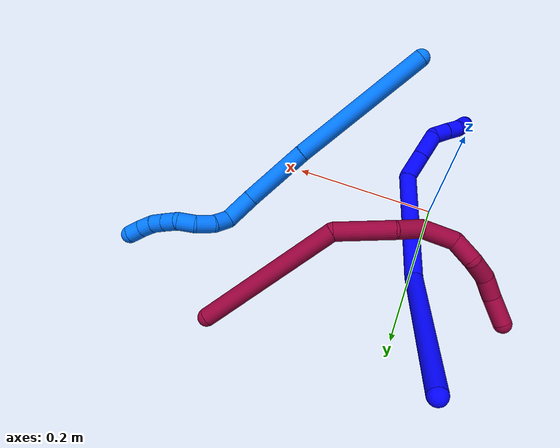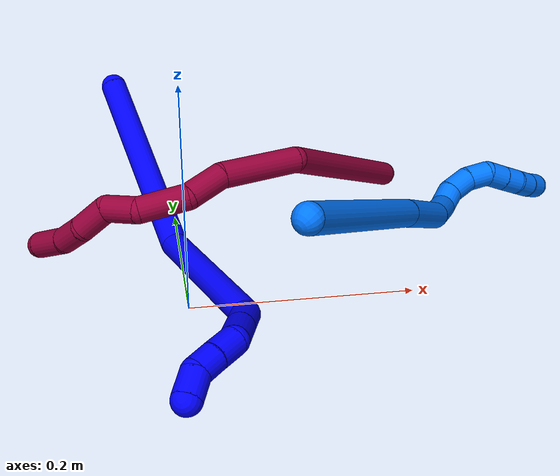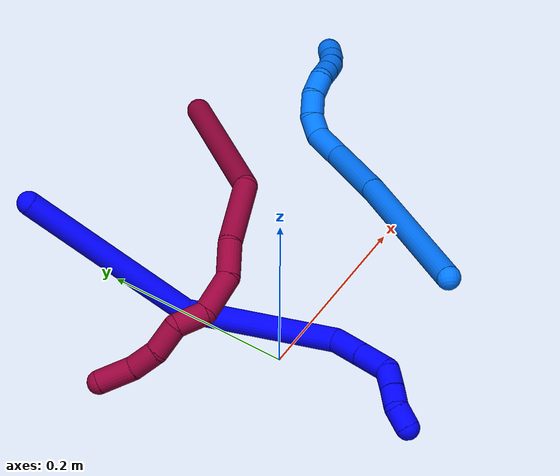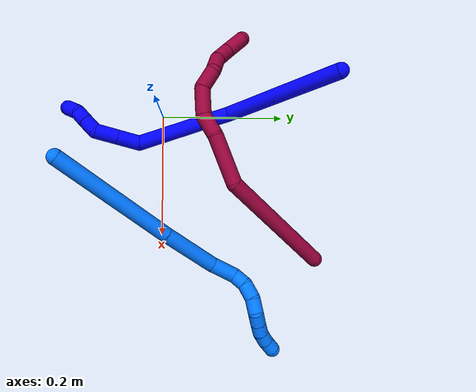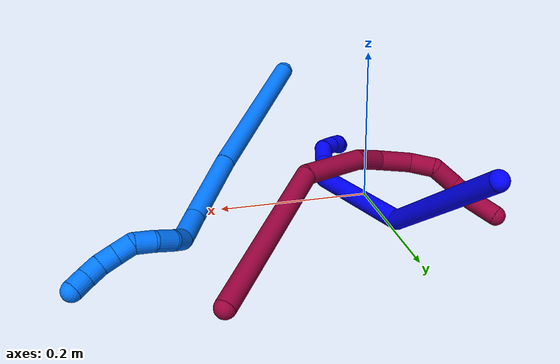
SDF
<sdf version="1.7">
 <world name="default">
  <model name="photoneo_s_sensor">
   <static>1</static>
   <pose>0 0 2 1.57079 1.57079 3.14159</pose>
   <link name="link">
    <inertial><mass>0.1</mass></inertial>
    <sensor name="sensor" type="depth">
     <update_rate>30</update_rate>
     <camera>
      <horizontal_fov>1.22</horizontal_fov>
      <image><width>1920</width><height>1200</height><format>B8G8R8</format></image>
      <clip><near>0.1</near><far>4</far></clip>
      <depth_camera><output>points</output></depth_camera>
     </camera>
     <plugin name="camera_plugin" filename="libgazebo_ros_depth_camera.so">
      <baseline>0.2</baseline>
      <alwaysOn>1</alwaysOn>
      <updateRate>0.0</updateRate>
      <cameraName>camera_ir</cameraName>
      <imageTopicName>/camera/color/image_raw</imageTopicName>
      <cameraInfoTopicName>/camera/color/camera_info</cameraInfoTopicName>
      <depthImageTopicName>/camera/depth/image_raw</depthImageTopicName>
      <depthImageCameraInfoTopicName>/camera/depth/camera_info</depthImageCameraInfoTopicName>
      <pointCloudTopicName>/camera/depth/points</pointCloudTopicName>
      <frameName>fr_optical</frameName>
      <pointCloudCutoff>0.1</pointCloudCutoff>
      <pointCloudCutoffMax>2.0</pointCloudCutoffMax>
      <distortionK1>0</distortionK1>
      <distortionK2>0</distortionK2>
      <distortionK3>0</distortionK3>
      <distortionT1>0</distortionT1>
      <distortionT2>0</distortionT2>
      <CxPrime>0</CxPrime>
      <Cx>0</Cx>
      <Cy>0</Cy>
      <focalLength>0</focalLength>
      <hackBaseline>0</hackBaseline>
     </plugin>
    </sensor>
   </link>
  </model>
  <model name="bin">
   <static>1</static>
   <link name="bottom">
    <collision name="collision-bottom">
     <pose>0 0 -0.01 0 -0 0</pose>
     <geometry><box><size>0.8 0.6 0.02</size></box></geometry>
     <surface>
      <friction><ode><mu>100</mu><mu2>100</mu2></ode></friction>
      <contact><collide_bitmask>65535</collide_bitmask></contact>
     </surface>
    </collision>
   </link>
   <link name="west_wall">
    <collision name="collision-west_wall">
     <pose>-0.41 0 0.1 0 -0 0</pose>
     <geometry><box><size>0.02 0.6 0.2</size></box></geometry>
     <surface>
      <friction><ode><mu>100</mu><mu2>100</mu2></ode></friction>
      <contact><collide_bitmask>65535</collide_bitmask></contact>
     </surface>
    </collision>
   </link>
   <link name="east_wall">
    <collision name="collision-east_wall">
     <pose>0.41 0 0.1 0 -0 0</pose>
     <geometry><box><size>0.02 0.6 0.2</size></box></geometry>
     <surface>
      <friction><ode><mu>100</mu><mu2>100</mu2></ode></friction>
      <contact><collide_bitmask>65535</collide_bitmask></contact>
     </surface>
    </collision>
   </link>
   <link name="south_wall">
    <collision name="collision-south_wall">
     <pose>0 -0.31 0.1 0 -0 0</pose>
     <geometry><box><size>0.8 0.02 0.2</size></box></geometry>
     <surface>
      <friction><ode><mu>100</mu><mu2>100</mu2></ode></friction>
      <contact><collide_bitmask>65535</collide_bitmask></contact>
     </surface>
    </collision>
   </link>
   <link name="north_wall">
    <collision name="collision-north_wall">
     <pose>0 0.31 0.1 0 -0 0</pose>
     <geometry><box><size>0.8 0.02 0.2</size></box></geometry>
     <surface>
      <friction><ode><mu>100</mu><mu2>100</mu2></ode></friction>
      <contact><collide_bitmask>65535</collide_bitmask></contact>
     </surface>
    </collision>
   </link>
  </model>
  <model name="1">
   <static>0</static>
   <link name="1">
    <collision name="collision-cylinder-e_1_1_4">
     <pose>0.042121 -0.089444 -0.011016 1.69334 0.43722 0.492216</pose>
     <geometry><cylinder><radius>0.0125</radius><length>0.198955</length></cylinder></geometry>
     <surface>
      <friction><ode><mu>1.16</mu><mu2>1.16</mu2><slip1>0</slip1><slip2>0</slip2></ode></friction>
      <contact><ode><kp>1e+06</kp><kd>1</kd><max_vel>0</max_vel><min_depth>0.001</min_depth></ode></contact>
     </surface>
    </collision>
    <visual name="visual-cylinder-e_1_1_4">
     <pose>0.042121 -0.089444 -0.011016 1.69334 0.43722 0.492216</pose>
     <geometry><cylinder><radius>0.0125</radius><length>0.198955</length></cylinder></geometry>
     <material><ambient>0 0 1 1</ambient></material>
    </visual>
    <collision name="collision-cylinder-e_2_4_5">
     <pose>0.08641 -0.244406 -0.065827 2.16003 0.027505 0.051461</pose>
     <geometry><cylinder><radius>0.0125</radius><length>0.157674</length></cylinder></geometry>
     <surface>
      <friction><ode><mu>1.16</mu><mu2>1.16</mu2><slip1>0</slip1><slip2>0</slip2></ode></friction>
      <contact><ode><kp>1e+06</kp><kd>1</kd><max_vel>0</max_vel><min_depth>0.001</min_depth></ode></contact>
     </surface>
    </collision>
    <visual name="visual-cylinder-e_2_4_5">
     <pose>0.08641 -0.244406 -0.065827 2.16003 0.027505 0.051461</pose>
     <geometry><cylinder><radius>0.0125</radius><length>0.157674</length></cylinder></geometry>
     <material><ambient>0 0 1 1</ambient></material>
    </visual>
    <collision name="collision-cylinder-e_3_5_6">
     <pose>0.09344 -0.31734 -0.126736 2.73266 0.254989 1.10736</pose>
     <geometry><cylinder><radius>0.0125</radius><length>0.038552</length></cylinder></geometry>
     <surface>
      <friction><ode><mu>1.16</mu><mu2>1.16</mu2><slip1>0</slip1><slip2>0</slip2></ode></friction>
      <contact><ode><kp>1e+06</kp><kd>1</kd><max_vel>0</max_vel><min_depth>0.001</min_depth></ode></contact>
     </surface>
    </collision>
    <visual name="visual-cylinder-e_3_5_6">
     <pose>0.09344 -0.31734 -0.126736 2.73266 0.254989 1.10736</pose>
     <geometry><cylinder><radius>0.0125</radius><length>0.038552</length></cylinder></geometry>
     <material><ambient>0 0 1 1</ambient></material>
    </visual>
    <collision name="collision-cylinder-e_4_6_7">
     <pose>0.103094 -0.331968 -0.160257 2.72748 0.261252 1.11776</pose>
     <geometry><cylinder><radius>0.0125</radius><length>0.0371</length></cylinder></geometry>
     <surface>
      <friction><ode><mu>1.16</mu><mu2>1.16</mu2><slip1>0</slip1><slip2>0</slip2></ode></friction>
      <contact><ode><kp>1e+06</kp><kd>1</kd><max_vel>0</max_vel><min_depth>0.001</min_depth></ode></contact>
     </surface>
    </collision>
    <visual name="visual-cylinder-e_4_6_7">
     <pose>0.103094 -0.331968 -0.160257 2.72748 0.261252 1.11776</pose>
     <geometry><cylinder><radius>0.0125</radius><length>0.0371</length></cylinder></geometry>
     <material><ambient>0 0 1 1</ambient></material>
    </visual>
    <collision name="collision-cylinder-e_5_7_8">
     <pose>0.116799 -0.339794 -0.184386 3.06207 0.855286 2.96745</pose>
     <geometry><cylinder><radius>0.0125</radius><length>0.023622</length></cylinder></geometry>
     <surface>
      <friction><ode><mu>1.16</mu><mu2>1.16</mu2><slip1>0</slip1><slip2>0</slip2></ode></friction>
      <contact><ode><kp>1e+06</kp><kd>1</kd><max_vel>0</max_vel><min_depth>0.001</min_depth></ode></contact>
     </surface>
    </collision>
    <visual name="visual-cylinder-e_5_7_8">
     <pose>0.116799 -0.339794 -0.184386 3.06207 0.855286 2.96745</pose>
     <geometry><cylinder><radius>0.0125</radius><length>0.023622</length></cylinder></geometry>
     <material><ambient>0 0 1 1</ambient></material>
    </visual>
    <collision name="collision-cylinder-e_6_8_9">
     <pose>0.13389 -0.340942 -0.198375 3.05683 0.915193 2.9698</pose>
     <geometry><cylinder><radius>0.0125</radius><length>0.020631</length></cylinder></geometry>
     <surface>
      <friction><ode><mu>1.16</mu><mu2>1.16</mu2><slip1>0</slip1><slip2>0</slip2></ode></friction>
      <contact><ode><kp>1e+06</kp><kd>1</kd><max_vel>0</max_vel><min_depth>0.001</min_depth></ode></contact>
     </surface>
    </collision>
    <visual name="visual-cylinder-e_6_8_9">
     <pose>0.13389 -0.340942 -0.198375 3.05683 0.915193 2.9698</pose>
     <geometry><cylinder><radius>0.0125</radius><length>0.020631</length></cylinder></geometry>
     <material><ambient>0 0 1 1</ambient></material>
    </visual>
    <collision name="collision-cylinder-e_7_9_2">
     <pose>0.151212 -0.347198 -0.209255 2.24923 0.893687 1.57249</pose>
     <geometry><cylinder><radius>0.0125</radius><length>0.023467</length></cylinder></geometry>
     <surface>
      <friction><ode><mu>1.16</mu><mu2>1.16</mu2><slip1>0</slip1><slip2>0</slip2></ode></friction>
      <contact><ode><kp>1e+06</kp><kd>1</kd><max_vel>0</max_vel><min_depth>0.001</min_depth></ode></contact>
     </surface>
    </collision>
    <visual name="visual-cylinder-e_7_9_2">
     <pose>0.151212 -0.347198 -0.209255 2.24923 0.893687 1.57249</pose>
     <geometry><cylinder><radius>0.0125</radius><length>0.023467</length></cylinder></geometry>
     <material><ambient>0 0 1 1</ambient></material>
    </visual>
    <collision name="collision-sphere-2">
     <pose>0.160357 -0.352922 -0.213869 0 -0 0</pose>
     <geometry><sphere><radius>0.0125</radius></sphere></geometry>
     <surface>
      <friction><ode><mu>1.16</mu><mu2>1.16</mu2><slip1>0</slip1><slip2>0</slip2></ode></friction>
      <contact><ode><kp>1e+06</kp><kd>1</kd><max_vel>0</max_vel><min_depth>0.001</min_depth></ode></contact>
     </surface>
    </collision>
    <visual name="visual-sphere-2">
     <pose>0.160357 -0.352922 -0.213869 0 -0 0</pose>
     <geometry><sphere><radius>0.0125</radius></sphere></geometry>
     <material><ambient>0 0 1 1</ambient></material>
    </visual>
    <collision name="collision-sphere-9">
     <pose>0.142067 -0.341475 -0.204641 0 -0 0</pose>
     <geometry><sphere><radius>0.0125</radius></sphere></geometry>
     <surface>
      <friction><ode><mu>1.16</mu><mu2>1.16</mu2><slip1>0</slip1><slip2>0</slip2></ode></friction>
      <contact><ode><kp>1e+06</kp><kd>1</kd><max_vel>0</max_vel><min_depth>0.001</min_depth></ode></contact>
     </surface>
    </collision>
    <visual name="visual-sphere-9">
     <pose>0.142067 -0.341475 -0.204641 0 -0 0</pose>
     <geometry><sphere><radius>0.0125</radius></sphere></geometry>
     <material><ambient>0 0 1 1</ambient></material>
    </visual>
    <collision name="collision-sphere-4">
     <pose>0.084242 -0.178888 -0.022032 0 -0 0</pose>
     <geometry><sphere><radius>0.0125</radius></sphere></geometry>
     <surface>
      <friction><ode><mu>1.16</mu><mu2>1.16</mu2><slip1>0</slip1><slip2>0</slip2></ode></friction>
      <contact><ode><kp>1e+06</kp><kd>1</kd><max_vel>0</max_vel><min_depth>0.001</min_depth></ode></contact>
     </surface>
    </collision>
    <visual name="visual-sphere-4">
     <pose>0.084242 -0.178888 -0.022032 0 -0 0</pose>
     <geometry><sphere><radius>0.0125</radius></sphere></geometry>
     <material><ambient>0 0 1 1</ambient></material>
    </visual>
    <collision name="collision-sphere-1">
     <geometry><sphere><radius>0.0125</radius></sphere></geometry>
     <surface>
      <friction><ode><mu>1.16</mu><mu2>1.16</mu2><slip1>0</slip1><slip2>0</slip2></ode></friction>
      <contact><ode><kp>1e+06</kp><kd>1</kd><max_vel>0</max_vel><min_depth>0.001</min_depth></ode></contact>
     </surface>
    </collision>
    <visual name="visual-sphere-1">
     <geometry><sphere><radius>0.0125</radius></sphere></geometry>
     <material><ambient>0 0 1 1</ambient></material>
    </visual>
    <collision name="collision-sphere-8">
     <pose>0.125713 -0.34041 -0.192109 0 -0 0</pose>
     <geometry><sphere><radius>0.0125</radius></sphere></geometry>
     <surface>
      <friction><ode><mu>1.16</mu><mu2>1.16</mu2><slip1>0</slip1><slip2>0</slip2></ode></friction>
      <contact><ode><kp>1e+06</kp><kd>1</kd><max_vel>0</max_vel><min_depth>0.001</min_depth></ode></contact>
     </surface>
    </collision>
    <visual name="visual-sphere-8">
     <pose>0.125713 -0.34041 -0.192109 0 -0 0</pose>
     <geometry><sphere><radius>0.0125</radius></sphere></geometry>
     <material><ambient>0 0 1 1</ambient></material>
    </visual>
    <collision name="collision-sphere-5">
     <pose>0.088578 -0.309923 -0.109621 0 -0 0</pose>
     <geometry><sphere><radius>0.0125</radius></sphere></geometry>
     <surface>
      <friction><ode><mu>1.16</mu><mu2>1.16</mu2><slip1>0</slip1><slip2>0</slip2></ode></friction>
      <contact><ode><kp>1e+06</kp><kd>1</kd><max_vel>0</max_vel><min_depth>0.001</min_depth></ode></contact>
     </surface>
    </collision>
    <visual name="visual-sphere-5">
     <pose>0.088578 -0.309923 -0.109621 0 -0 0</pose>
     <geometry><sphere><radius>0.0125</radius></sphere></geometry>
     <material><ambient>0 0 1 1</ambient></material>
    </visual>
    <collision name="collision-sphere-6">
     <pose>0.098302 -0.324757 -0.143851 0 -0 0</pose>
     <geometry><sphere><radius>0.0125</radius></sphere></geometry>
     <surface>
      <friction><ode><mu>1.16</mu><mu2>1.16</mu2><slip1>0</slip1><slip2>0</slip2></ode></friction>
      <contact><ode><kp>1e+06</kp><kd>1</kd><max_vel>0</max_vel><min_depth>0.001</min_depth></ode></contact>
     </surface>
    </collision>
    <visual name="visual-sphere-6">
     <pose>0.098302 -0.324757 -0.143851 0 -0 0</pose>
     <geometry><sphere><radius>0.0125</radius></sphere></geometry>
     <material><ambient>0 0 1 1</ambient></material>
    </visual>
    <collision name="collision-sphere-7">
     <pose>0.107885 -0.339179 -0.176662 0 -0 0</pose>
     <geometry><sphere><radius>0.0125</radius></sphere></geometry>
     <surface>
      <friction><ode><mu>1.16</mu><mu2>1.16</mu2><slip1>0</slip1><slip2>0</slip2></ode></friction>
      <contact><ode><kp>1e+06</kp><kd>1</kd><max_vel>0</max_vel><min_depth>0.001</min_depth></ode></contact>
     </surface>
    </collision>
    <visual name="visual-sphere-7">
     <pose>0.107885 -0.339179 -0.176662 0 -0 0</pose>
     <geometry><sphere><radius>0.0125</radius></sphere></geometry>
     <material><ambient>0 0 1 1</ambient></material>
    </visual>
    <inertial>
     <pose>0.077003 -0.20818 -0.073522 0 -0 0</pose>
     <mass>0.5</mass>
     <inertia>
      <ixx>0.001191</ixx>
      <ixy>0</ixy>
      <ixz>0</ixz>
      <iyy>0.000163</iyy>
      <iyz>0</iyz>
      <izz>0.000565</izz>
     </inertia>
    </inertial>
   </link>
   <pose>-0.053291 0.26635 0.125117 2.57742 0.735395 -2.77772</pose>
  </model>
  <model name="8">
   <static>0</static>
   <link name="8">
    <collision name="collision-cylinder-e_1_1_4">
     <pose>-0.06923 0.02843 0.067849 -0.396795 -0.755052 0.159109</pose>
     <geometry><cylinder><radius>0.0125</radius><length>0.202034</length></cylinder></geometry>
     <surface>
      <friction><ode><mu>1.16</mu><mu2>1.16</mu2><slip1>0</slip1><slip2>0</slip2></ode></friction>
      <contact><ode><kp>1e+06</kp><kd>1</kd><max_vel>0</max_vel><min_depth>0.001</min_depth></ode></contact>
     </surface>
    </collision>
    <visual name="visual-cylinder-e_1_1_4">
     <pose>-0.06923 0.02843 0.067849 -0.396795 -0.755052 0.159109</pose>
     <geometry><cylinder><radius>0.0125</radius><length>0.202034</length></cylinder></geometry>
     <material><ambient>0.584314 0 0.227451 1</ambient></material>
    </visual>
    <collision name="collision-cylinder-e_2_4_5">
     <pose>-0.156809 0.047613 0.169966 0.263567 -0.477135 -0.064451</pose>
     <geometry><cylinder><radius>0.0125</radius><length>0.079914</length></cylinder></geometry>
     <surface>
      <friction><ode><mu>1.16</mu><mu2>1.16</mu2><slip1>0</slip1><slip2>0</slip2></ode></friction>
      <contact><ode><kp>1e+06</kp><kd>1</kd><max_vel>0</max_vel><min_depth>0.001</min_depth></ode></contact>
     </surface>
    </collision>
    <visual name="visual-cylinder-e_2_4_5">
     <pose>-0.156809 0.047613 0.169966 0.263567 -0.477135 -0.064451</pose>
     <geometry><cylinder><radius>0.0125</radius><length>0.079914</length></cylinder></geometry>
     <material><ambient>0.584314 0 0.227451 1</ambient></material>
    </visual>
    <collision name="collision-cylinder-e_3_5_6">
     <pose>-0.178293 0.035724 0.222721 0.141938 -0.166303 -0.011849</pose>
     <geometry><cylinder><radius>0.0125</radius><length>0.037871</length></cylinder></geometry>
     <surface>
      <friction><ode><mu>1.16</mu><mu2>1.16</mu2><slip1>0</slip1><slip2>0</slip2></ode></friction>
      <contact><ode><kp>1e+06</kp><kd>1</kd><max_vel>0</max_vel><min_depth>0.001</min_depth></ode></contact>
     </surface>
    </collision>
    <visual name="visual-cylinder-e_3_5_6">
     <pose>-0.178293 0.035724 0.222721 0.141938 -0.166303 -0.011849</pose>
     <geometry><cylinder><radius>0.0125</radius><length>0.037871</length></cylinder></geometry>
     <material><ambient>0.584314 0 0.227451 1</ambient></material>
    </visual>
    <collision name="collision-cylinder-e_4_6_7">
     <pose>-0.187867 0.020223 0.259539 0.611712 -0.280024 -0.088945</pose>
     <geometry><cylinder><radius>0.0125</radius><length>0.046598</length></cylinder></geometry>
     <surface>
      <friction><ode><mu>1.16</mu><mu2>1.16</mu2><slip1>0</slip1><slip2>0</slip2></ode></friction>
      <contact><ode><kp>1e+06</kp><kd>1</kd><max_vel>0</max_vel><min_depth>0.001</min_depth></ode></contact>
     </surface>
    </collision>
    <visual name="visual-cylinder-e_4_6_7">
     <pose>-0.187867 0.020223 0.259539 0.611712 -0.280024 -0.088945</pose>
     <geometry><cylinder><radius>0.0125</radius><length>0.046598</length></cylinder></geometry>
     <material><ambient>0.584314 0 0.227451 1</ambient></material>
    </visual>
    <collision name="collision-cylinder-e_5_7_8">
     <pose>-0.198117 -0.007796 0.283132 1.23672 -0.233114 -0.166217</pose>
     <geometry><cylinder><radius>0.0125</radius><length>0.032989</length></cylinder></geometry>
     <surface>
      <friction><ode><mu>1.16</mu><mu2>1.16</mu2><slip1>0</slip1><slip2>0</slip2></ode></friction>
      <contact><ode><kp>1e+06</kp><kd>1</kd><max_vel>0</max_vel><min_depth>0.001</min_depth></ode></contact>
     </surface>
    </collision>
    <visual name="visual-cylinder-e_5_7_8">
     <pose>-0.198117 -0.007796 0.283132 1.23672 -0.233114 -0.166217</pose>
     <geometry><cylinder><radius>0.0125</radius><length>0.032989</length></cylinder></geometry>
     <material><ambient>0.584314 0 0.227451 1</ambient></material>
    </visual>
    <collision name="collision-cylinder-e_6_8_9">
     <pose>-0.197407 -0.034562 0.298805 0.839542 0.282198 0.126618</pose>
     <geometry><cylinder><radius>0.0125</radius><length>0.032465</length></cylinder></geometry>
     <surface>
      <friction><ode><mu>1.16</mu><mu2>1.16</mu2><slip1>0</slip1><slip2>0</slip2></ode></friction>
      <contact><ode><kp>1e+06</kp><kd>1</kd><max_vel>0</max_vel><min_depth>0.001</min_depth></ode></contact>
     </surface>
    </collision>
    <visual name="visual-cylinder-e_6_8_9">
     <pose>-0.197407 -0.034562 0.298805 0.839542 0.282198 0.126618</pose>
     <geometry><cylinder><radius>0.0125</radius><length>0.032465</length></cylinder></geometry>
     <material><ambient>0.584314 0 0.227451 1</ambient></material>
    </visual>
    <collision name="collision-cylinder-e_7_9_10">
     <pose>-0.188106 -0.059504 0.314403 1.19995 0.322404 0.221576</pose>
     <geometry><cylinder><radius>0.0125</radius><length>0.030177</length></cylinder></geometry>
     <surface>
      <friction><ode><mu>1.16</mu><mu2>1.16</mu2><slip1>0</slip1><slip2>0</slip2></ode></friction>
      <contact><ode><kp>1e+06</kp><kd>1</kd><max_vel>0</max_vel><min_depth>0.001</min_depth></ode></contact>
     </surface>
    </collision>
    <visual name="visual-cylinder-e_7_9_10">
     <pose>-0.188106 -0.059504 0.314403 1.19995 0.322404 0.221576</pose>
     <geometry><cylinder><radius>0.0125</radius><length>0.030177</length></cylinder></geometry>
     <material><ambient>0.584314 0 0.227451 1</ambient></material>
    </visual>
    <collision name="collision-cylinder-e_8_10_2">
     <pose>-0.181023 -0.091289 0.323401 1.36703 0.12162 0.099099</pose>
     <geometry><cylinder><radius>0.0125</radius><length>0.037953</length></cylinder></geometry>
     <surface>
      <friction><ode><mu>1.16</mu><mu2>1.16</mu2><slip1>0</slip1><slip2>0</slip2></ode></friction>
      <contact><ode><kp>1e+06</kp><kd>1</kd><max_vel>0</max_vel><min_depth>0.001</min_depth></ode></contact>
     </surface>
    </collision>
    <visual name="visual-cylinder-e_8_10_2">
     <pose>-0.181023 -0.091289 0.323401 1.36703 0.12162 0.099099</pose>
     <geometry><cylinder><radius>0.0125</radius><length>0.037953</length></cylinder></geometry>
     <material><ambient>0.584314 0 0.227451 1</ambient></material>
    </visual>
    <collision name="collision-sphere-2">
     <pose>-0.178721 -0.109736 0.327213 0 -0 0</pose>
     <geometry><sphere><radius>0.0125</radius></sphere></geometry>
     <surface>
      <friction><ode><mu>1.16</mu><mu2>1.16</mu2><slip1>0</slip1><slip2>0</slip2></ode></friction>
      <contact><ode><kp>1e+06</kp><kd>1</kd><max_vel>0</max_vel><min_depth>0.001</min_depth></ode></contact>
     </surface>
    </collision>
    <visual name="visual-sphere-2">
     <pose>-0.178721 -0.109736 0.327213 0 -0 0</pose>
     <geometry><sphere><radius>0.0125</radius></sphere></geometry>
     <material><ambient>0.584314 0 0.227451 1</ambient></material>
    </visual>
    <collision name="collision-sphere-10">
     <pose>-0.183325 -0.072842 0.319589 0 -0 0</pose>
     <geometry><sphere><radius>0.0125</radius></sphere></geometry>
     <surface>
      <friction><ode><mu>1.16</mu><mu2>1.16</mu2><slip1>0</slip1><slip2>0</slip2></ode></friction>
      <contact><ode><kp>1e+06</kp><kd>1</kd><max_vel>0</max_vel><min_depth>0.001</min_depth></ode></contact>
     </surface>
    </collision>
    <visual name="visual-sphere-10">
     <pose>-0.183325 -0.072842 0.319589 0 -0 0</pose>
     <geometry><sphere><radius>0.0125</radius></sphere></geometry>
     <material><ambient>0.584314 0 0.227451 1</ambient></material>
    </visual>
    <collision name="collision-sphere-9">
     <pose>-0.192887 -0.046166 0.309216 0 -0 0</pose>
     <geometry><sphere><radius>0.0125</radius></sphere></geometry>
     <surface>
      <friction><ode><mu>1.16</mu><mu2>1.16</mu2><slip1>0</slip1><slip2>0</slip2></ode></friction>
      <contact><ode><kp>1e+06</kp><kd>1</kd><max_vel>0</max_vel><min_depth>0.001</min_depth></ode></contact>
     </surface>
    </collision>
    <visual name="visual-sphere-9">
     <pose>-0.192887 -0.046166 0.309216 0 -0 0</pose>
     <geometry><sphere><radius>0.0125</radius></sphere></geometry>
     <material><ambient>0.584314 0 0.227451 1</ambient></material>
    </visual>
    <collision name="collision-sphere-4">
     <pose>-0.138459 0.05686 0.135697 0 -0 0</pose>
     <geometry><sphere><radius>0.0125</radius></sphere></geometry>
     <surface>
      <friction><ode><mu>1.16</mu><mu2>1.16</mu2><slip1>0</slip1><slip2>0</slip2></ode></friction>
      <contact><ode><kp>1e+06</kp><kd>1</kd><max_vel>0</max_vel><min_depth>0.001</min_depth></ode></contact>
     </surface>
    </collision>
    <visual name="visual-sphere-4">
     <pose>-0.138459 0.05686 0.135697 0 -0 0</pose>
     <geometry><sphere><radius>0.0125</radius></sphere></geometry>
     <material><ambient>0.584314 0 0.227451 1</ambient></material>
    </visual>
    <collision name="collision-sphere-1">
     <geometry><sphere><radius>0.0125</radius></sphere></geometry>
     <surface>
      <friction><ode><mu>1.16</mu><mu2>1.16</mu2><slip1>0</slip1><slip2>0</slip2></ode></friction>
      <contact><ode><kp>1e+06</kp><kd>1</kd><max_vel>0</max_vel><min_depth>0.001</min_depth></ode></contact>
     </surface>
    </collision>
    <visual name="visual-sphere-1">
     <geometry><sphere><radius>0.0125</radius></sphere></geometry>
     <material><ambient>0.584314 0 0.227451 1</ambient></material>
    </visual>
    <collision name="collision-sphere-8">
     <pose>-0.201927 -0.022957 0.288394 0 -0 0</pose>
     <geometry><sphere><radius>0.0125</radius></sphere></geometry>
     <surface>
      <friction><ode><mu>1.16</mu><mu2>1.16</mu2><slip1>0</slip1><slip2>0</slip2></ode></friction>
      <contact><ode><kp>1e+06</kp><kd>1</kd><max_vel>0</max_vel><min_depth>0.001</min_depth></ode></contact>
     </surface>
    </collision>
    <visual name="visual-sphere-8">
     <pose>-0.201927 -0.022957 0.288394 0 -0 0</pose>
     <geometry><sphere><radius>0.0125</radius></sphere></geometry>
     <material><ambient>0.584314 0 0.227451 1</ambient></material>
    </visual>
    <collision name="collision-sphere-5">
     <pose>-0.175159 0.038365 0.204235 0 -0 0</pose>
     <geometry><sphere><radius>0.0125</radius></sphere></geometry>
     <surface>
      <friction><ode><mu>1.16</mu><mu2>1.16</mu2><slip1>0</slip1><slip2>0</slip2></ode></friction>
      <contact><ode><kp>1e+06</kp><kd>1</kd><max_vel>0</max_vel><min_depth>0.001</min_depth></ode></contact>
     </surface>
    </collision>
    <visual name="visual-sphere-5">
     <pose>-0.175159 0.038365 0.204235 0 -0 0</pose>
     <geometry><sphere><radius>0.0125</radius></sphere></geometry>
     <material><ambient>0.584314 0 0.227451 1</ambient></material>
    </visual>
    <collision name="collision-sphere-6">
     <pose>-0.181428 0.033082 0.241207 0 -0 0</pose>
     <geometry><sphere><radius>0.0125</radius></sphere></geometry>
     <surface>
      <friction><ode><mu>1.16</mu><mu2>1.16</mu2><slip1>0</slip1><slip2>0</slip2></ode></friction>
      <contact><ode><kp>1e+06</kp><kd>1</kd><max_vel>0</max_vel><min_depth>0.001</min_depth></ode></contact>
     </surface>
    </collision>
    <visual name="visual-sphere-6">
     <pose>-0.181428 0.033082 0.241207 0 -0 0</pose>
     <geometry><sphere><radius>0.0125</radius></sphere></geometry>
     <material><ambient>0.584314 0 0.227451 1</ambient></material>
    </visual>
    <collision name="collision-sphere-7">
     <pose>-0.194307 0.007365 0.27787 0 -0 0</pose>
     <geometry><sphere><radius>0.0125</radius></sphere></geometry>
     <surface>
      <friction><ode><mu>1.16</mu><mu2>1.16</mu2><slip1>0</slip1><slip2>0</slip2></ode></friction>
      <contact><ode><kp>1e+06</kp><kd>1</kd><max_vel>0</max_vel><min_depth>0.001</min_depth></ode></contact>
     </surface>
    </collision>
    <visual name="visual-sphere-7">
     <pose>-0.194307 0.007365 0.27787 0 -0 0</pose>
     <geometry><sphere><radius>0.0125</radius></sphere></geometry>
     <material><ambient>0.584314 0 0.227451 1</ambient></material>
    </visual>
    <inertial>
     <pose>-0.135031 0.010409 0.177243 0 -0 0</pose>
     <mass>0.5</mass>
     <inertia>
      <ixx>0.000637</ixx>
      <ixy>0</ixy>
      <ixz>0</ixz>
      <iyy>0.000797</iyy>
      <iyz>0</iyz>
      <izz>0.000362</izz>
     </inertia>
    </inertial>
   </link>
   <pose>0.236491 0.256431 0.012406 2.72208 1.08873 0.244065</pose>
  </model>
  <model name="14">
   <static>0</static>
   <link name="14">
    <collision name="collision-cylinder-e_1_1_4">
     <pose>0.052417 0.046196 0.076346 -0.544158 0.53111 -0.151473</pose>
     <geometry><cylinder><radius>0.0125</radius><length>0.206981</length></cylinder></geometry>
     <surface>
      <friction><ode><mu>1.16</mu><mu2>1.16</mu2><slip1>0</slip1><slip2>0</slip2></ode></friction>
      <contact><ode><kp>1e+06</kp><kd>1</kd><max_vel>0</max_vel><min_depth>0.001</min_depth></ode></contact>
     </surface>
    </collision>
    <visual name="visual-cylinder-e_1_1_4">
     <pose>0.052417 0.046196 0.076346 -0.544158 0.53111 -0.151473</pose>
     <geometry><cylinder><radius>0.0125</radius><length>0.206981</length></cylinder></geometry>
     <material><ambient>0 0.462745 1 1</ambient></material>
    </visual>
    <collision name="collision-cylinder-e_2_4_5">
     <pose>0.130146 0.115444 0.186414 -0.599591 0.554749 -0.175564</pose>
     <geometry><cylinder><radius>0.0125</radius><length>0.096109</length></cylinder></geometry>
     <surface>
      <friction><ode><mu>1.16</mu><mu2>1.16</mu2><slip1>0</slip1><slip2>0</slip2></ode></friction>
      <contact><ode><kp>1e+06</kp><kd>1</kd><max_vel>0</max_vel><min_depth>0.001</min_depth></ode></contact>
     </surface>
    </collision>
    <visual name="visual-cylinder-e_2_4_5">
     <pose>0.130146 0.115444 0.186414 -0.599591 0.554749 -0.175564</pose>
     <geometry><cylinder><radius>0.0125</radius><length>0.096109</length></cylinder></geometry>
     <material><ambient>0 0.462745 1 1</ambient></material>
    </visual>
    <collision name="collision-cylinder-e_3_5_6">
     <pose>0.162319 0.15033 0.237023 -0.611329 0.321206 -0.102149</pose>
     <geometry><cylinder><radius>0.0125</radius><length>0.043466</length></cylinder></geometry>
     <surface>
      <friction><ode><mu>1.16</mu><mu2>1.16</mu2><slip1>0</slip1><slip2>0</slip2></ode></friction>
      <contact><ode><kp>1e+06</kp><kd>1</kd><max_vel>0</max_vel><min_depth>0.001</min_depth></ode></contact>
     </surface>
    </collision>
    <visual name="visual-cylinder-e_3_5_6">
     <pose>0.162319 0.15033 0.237023 -0.611329 0.321206 -0.102149</pose>
     <geometry><cylinder><radius>0.0125</radius><length>0.043466</length></cylinder></geometry>
     <material><ambient>0 0.462745 1 1</ambient></material>
    </visual>
    <collision name="collision-cylinder-e_4_6_7">
     <pose>0.16777 0.164042 0.264983 -0.16783 -0.124967 0.010525</pose>
     <geometry><cylinder><radius>0.0125</radius><length>0.022638</length></cylinder></geometry>
     <surface>
      <friction><ode><mu>1.16</mu><mu2>1.16</mu2><slip1>0</slip1><slip2>0</slip2></ode></friction>
      <contact><ode><kp>1e+06</kp><kd>1</kd><max_vel>0</max_vel><min_depth>0.001</min_depth></ode></contact>
     </surface>
    </collision>
    <visual name="visual-cylinder-e_4_6_7">
     <pose>0.16777 0.164042 0.264983 -0.16783 -0.124967 0.010525</pose>
     <geometry><cylinder><radius>0.0125</radius><length>0.022638</length></cylinder></geometry>
     <material><ambient>0 0.462745 1 1</ambient></material>
    </visual>
    <collision name="collision-cylinder-e_5_7_8">
     <pose>0.167549 0.164051 0.288686 0.146758 0.092963 0.006839</pose>
     <geometry><cylinder><radius>0.0125</radius><length>0.025644</length></cylinder></geometry>
     <surface>
      <friction><ode><mu>1.16</mu><mu2>1.16</mu2><slip1>0</slip1><slip2>0</slip2></ode></friction>
      <contact><ode><kp>1e+06</kp><kd>1</kd><max_vel>0</max_vel><min_depth>0.001</min_depth></ode></contact>
     </surface>
    </collision>
    <visual name="visual-cylinder-e_5_7_8">
     <pose>0.167549 0.164051 0.288686 0.146758 0.092963 0.006839</pose>
     <geometry><cylinder><radius>0.0125</radius><length>0.025644</length></cylinder></geometry>
     <material><ambient>0 0.462745 1 1</ambient></material>
    </visual>
    <collision name="collision-cylinder-e_6_8_9">
     <pose>0.172871 0.158 0.311784 0.380243 0.351309 0.068285</pose>
     <geometry><cylinder><radius>0.0125</radius><length>0.024015</length></cylinder></geometry>
     <surface>
      <friction><ode><mu>1.16</mu><mu2>1.16</mu2><slip1>0</slip1><slip2>0</slip2></ode></friction>
      <contact><ode><kp>1e+06</kp><kd>1</kd><max_vel>0</max_vel><min_depth>0.001</min_depth></ode></contact>
     </surface>
    </collision>
    <visual name="visual-cylinder-e_6_8_9">
     <pose>0.172871 0.158 0.311784 0.380243 0.351309 0.068285</pose>
     <geometry><cylinder><radius>0.0125</radius><length>0.024015</length></cylinder></geometry>
     <material><ambient>0 0.462745 1 1</ambient></material>
    </visual>
    <collision name="collision-cylinder-e_7_9_10">
     <pose>0.184938 0.1525 0.329076 0.190428 0.851524 0.086567</pose>
     <geometry><cylinder><radius>0.0125</radius><length>0.021094</length></cylinder></geometry>
     <surface>
      <friction><ode><mu>1.16</mu><mu2>1.16</mu2><slip1>0</slip1><slip2>0</slip2></ode></friction>
      <contact><ode><kp>1e+06</kp><kd>1</kd><max_vel>0</max_vel><min_depth>0.001</min_depth></ode></contact>
     </surface>
    </collision>
    <visual name="visual-cylinder-e_7_9_10">
     <pose>0.184938 0.1525 0.329076 0.190428 0.851524 0.086567</pose>
     <geometry><cylinder><radius>0.0125</radius><length>0.021094</length></cylinder></geometry>
     <material><ambient>0 0.462745 1 1</ambient></material>
    </visual>
    <collision name="collision-cylinder-e_8_10_11">
     <pose>0.200273 0.150193 0.342565 0.147767 0.832144 0.065389</pose>
     <geometry><cylinder><radius>0.0125</radius><length>0.020019</length></cylinder></geometry>
     <surface>
      <friction><ode><mu>1.16</mu><mu2>1.16</mu2><slip1>0</slip1><slip2>0</slip2></ode></friction>
      <contact><ode><kp>1e+06</kp><kd>1</kd><max_vel>0</max_vel><min_depth>0.001</min_depth></ode></contact>
     </surface>
    </collision>
    <visual name="visual-cylinder-e_8_10_11">
     <pose>0.200273 0.150193 0.342565 0.147767 0.832144 0.065389</pose>
     <geometry><cylinder><radius>0.0125</radius><length>0.020019</length></cylinder></geometry>
     <material><ambient>0 0.462745 1 1</ambient></material>
    </visual>
    <collision name="collision-cylinder-e_9_11_12">
     <pose>0.214622 0.150507 0.356311 -0.182441 0.767644 -0.073851</pose>
     <geometry><cylinder><radius>0.0125</radius><length>0.020011</length></cylinder></geometry>
     <surface>
      <friction><ode><mu>1.16</mu><mu2>1.16</mu2><slip1>0</slip1><slip2>0</slip2></ode></friction>
      <contact><ode><kp>1e+06</kp><kd>1</kd><max_vel>0</max_vel><min_depth>0.001</min_depth></ode></contact>
     </surface>
    </collision>
    <visual name="visual-cylinder-e_9_11_12">
     <pose>0.214622 0.150507 0.356311 -0.182441 0.767644 -0.073851</pose>
     <geometry><cylinder><radius>0.0125</radius><length>0.020011</length></cylinder></geometry>
     <material><ambient>0 0.462745 1 1</ambient></material>
    </visual>
    <collision name="collision-cylinder-e_10_12_2">
     <pose>0.227581 0.15409 0.371066 -0.288356 0.643995 -0.096794</pose>
     <geometry><cylinder><radius>0.0125</radius><length>0.020021</length></cylinder></geometry>
     <surface>
      <friction><ode><mu>1.16</mu><mu2>1.16</mu2><slip1>0</slip1><slip2>0</slip2></ode></friction>
      <contact><ode><kp>1e+06</kp><kd>1</kd><max_vel>0</max_vel><min_depth>0.001</min_depth></ode></contact>
     </surface>
    </collision>
    <visual name="visual-cylinder-e_10_12_2">
     <pose>0.227581 0.15409 0.371066 -0.288356 0.643995 -0.096794</pose>
     <geometry><cylinder><radius>0.0125</radius><length>0.020021</length></cylinder></geometry>
     <material><ambient>0 0.462745 1 1</ambient></material>
    </visual>
    <collision name="collision-sphere-2">
     <pose>0.233591 0.156366 0.378741 0 -0 0</pose>
     <geometry><sphere><radius>0.0125</radius></sphere></geometry>
     <surface>
      <friction><ode><mu>1.16</mu><mu2>1.16</mu2><slip1>0</slip1><slip2>0</slip2></ode></friction>
      <contact><ode><kp>1e+06</kp><kd>1</kd><max_vel>0</max_vel><min_depth>0.001</min_depth></ode></contact>
     </surface>
    </collision>
    <visual name="visual-sphere-2">
     <pose>0.233591 0.156366 0.378741 0 -0 0</pose>
     <geometry><sphere><radius>0.0125</radius></sphere></geometry>
     <material><ambient>0 0.462745 1 1</ambient></material>
    </visual>
    <collision name="collision-sphere-12">
     <pose>0.221571 0.151813 0.363392 0 -0 0</pose>
     <geometry><sphere><radius>0.0125</radius></sphere></geometry>
     <surface>
      <friction><ode><mu>1.16</mu><mu2>1.16</mu2><slip1>0</slip1><slip2>0</slip2></ode></friction>
      <contact><ode><kp>1e+06</kp><kd>1</kd><max_vel>0</max_vel><min_depth>0.001</min_depth></ode></contact>
     </surface>
    </collision>
    <visual name="visual-sphere-12">
     <pose>0.221571 0.151813 0.363392 0 -0 0</pose>
     <geometry><sphere><radius>0.0125</radius></sphere></geometry>
     <material><ambient>0 0.462745 1 1</ambient></material>
    </visual>
    <collision name="collision-sphere-11">
     <pose>0.207674 0.149201 0.349231 0 -0 0</pose>
     <geometry><sphere><radius>0.0125</radius></sphere></geometry>
     <surface>
      <friction><ode><mu>1.16</mu><mu2>1.16</mu2><slip1>0</slip1><slip2>0</slip2></ode></friction>
      <contact><ode><kp>1e+06</kp><kd>1</kd><max_vel>0</max_vel><min_depth>0.001</min_depth></ode></contact>
     </surface>
    </collision>
    <visual name="visual-sphere-11">
     <pose>0.207674 0.149201 0.349231 0 -0 0</pose>
     <geometry><sphere><radius>0.0125</radius></sphere></geometry>
     <material><ambient>0 0.462745 1 1</ambient></material>
    </visual>
    <collision name="collision-sphere-10">
     <pose>0.192872 0.151185 0.335899 0 -0 0</pose>
     <geometry><sphere><radius>0.0125</radius></sphere></geometry>
     <surface>
      <friction><ode><mu>1.16</mu><mu2>1.16</mu2><slip1>0</slip1><slip2>0</slip2></ode></friction>
      <contact><ode><kp>1e+06</kp><kd>1</kd><max_vel>0</max_vel><min_depth>0.001</min_depth></ode></contact>
     </surface>
    </collision>
    <visual name="visual-sphere-10">
     <pose>0.192872 0.151185 0.335899 0 -0 0</pose>
     <geometry><sphere><radius>0.0125</radius></sphere></geometry>
     <material><ambient>0 0.462745 1 1</ambient></material>
    </visual>
    <collision name="collision-sphere-9">
     <pose>0.177004 0.153816 0.322253 0 -0 0</pose>
     <geometry><sphere><radius>0.0125</radius></sphere></geometry>
     <surface>
      <friction><ode><mu>1.16</mu><mu2>1.16</mu2><slip1>0</slip1><slip2>0</slip2></ode></friction>
      <contact><ode><kp>1e+06</kp><kd>1</kd><max_vel>0</max_vel><min_depth>0.001</min_depth></ode></contact>
     </surface>
    </collision>
    <visual name="visual-sphere-9">
     <pose>0.177004 0.153816 0.322253 0 -0 0</pose>
     <geometry><sphere><radius>0.0125</radius></sphere></geometry>
     <material><ambient>0 0.462745 1 1</ambient></material>
    </visual>
    <collision name="collision-sphere-4">
     <pose>0.104834 0.092393 0.152691 0 -0 0</pose>
     <geometry><sphere><radius>0.0125</radius></sphere></geometry>
     <surface>
      <friction><ode><mu>1.16</mu><mu2>1.16</mu2><slip1>0</slip1><slip2>0</slip2></ode></friction>
      <contact><ode><kp>1e+06</kp><kd>1</kd><max_vel>0</max_vel><min_depth>0.001</min_depth></ode></contact>
     </surface>
    </collision>
    <visual name="visual-sphere-4">
     <pose>0.104834 0.092393 0.152691 0 -0 0</pose>
     <geometry><sphere><radius>0.0125</radius></sphere></geometry>
     <material><ambient>0 0.462745 1 1</ambient></material>
    </visual>
    <collision name="collision-sphere-1">
     <geometry><sphere><radius>0.0125</radius></sphere></geometry>
     <surface>
      <friction><ode><mu>1.16</mu><mu2>1.16</mu2><slip1>0</slip1><slip2>0</slip2></ode></friction>
      <contact><ode><kp>1e+06</kp><kd>1</kd><max_vel>0</max_vel><min_depth>0.001</min_depth></ode></contact>
     </surface>
    </collision>
    <visual name="visual-sphere-1">
     <geometry><sphere><radius>0.0125</radius></sphere></geometry>
     <material><ambient>0 0.462745 1 1</ambient></material>
    </visual>
    <collision name="collision-sphere-8">
     <pose>0.168739 0.162184 0.301315 0 -0 0</pose>
     <geometry><sphere><radius>0.0125</radius></sphere></geometry>
     <surface>
      <friction><ode><mu>1.16</mu><mu2>1.16</mu2><slip1>0</slip1><slip2>0</slip2></ode></friction>
      <contact><ode><kp>1e+06</kp><kd>1</kd><max_vel>0</max_vel><min_depth>0.001</min_depth></ode></contact>
     </surface>
    </collision>
    <visual name="visual-sphere-8">
     <pose>0.168739 0.162184 0.301315 0 -0 0</pose>
     <geometry><sphere><radius>0.0125</radius></sphere></geometry>
     <material><ambient>0 0.462745 1 1</ambient></material>
    </visual>
    <collision name="collision-sphere-5">
     <pose>0.155458 0.138494 0.220137 0 -0 0</pose>
     <geometry><sphere><radius>0.0125</radius></sphere></geometry>
     <surface>
      <friction><ode><mu>1.16</mu><mu2>1.16</mu2><slip1>0</slip1><slip2>0</slip2></ode></friction>
      <contact><ode><kp>1e+06</kp><kd>1</kd><max_vel>0</max_vel><min_depth>0.001</min_depth></ode></contact>
     </surface>
    </collision>
    <visual name="visual-sphere-5">
     <pose>0.155458 0.138494 0.220137 0 -0 0</pose>
     <geometry><sphere><radius>0.0125</radius></sphere></geometry>
     <material><ambient>0 0.462745 1 1</ambient></material>
    </visual>
    <collision name="collision-sphere-6">
     <pose>0.16918 0.162166 0.25391 0 -0 0</pose>
     <geometry><sphere><radius>0.0125</radius></sphere></geometry>
     <surface>
      <friction><ode><mu>1.16</mu><mu2>1.16</mu2><slip1>0</slip1><slip2>0</slip2></ode></friction>
      <contact><ode><kp>1e+06</kp><kd>1</kd><max_vel>0</max_vel><min_depth>0.001</min_depth></ode></contact>
     </surface>
    </collision>
    <visual name="visual-sphere-6">
     <pose>0.16918 0.162166 0.25391 0 -0 0</pose>
     <geometry><sphere><radius>0.0125</radius></sphere></geometry>
     <material><ambient>0 0.462745 1 1</ambient></material>
    </visual>
    <collision name="collision-sphere-7">
     <pose>0.166359 0.165918 0.276056 0 -0 0</pose>
     <geometry><sphere><radius>0.0125</radius></sphere></geometry>
     <surface>
      <friction><ode><mu>1.16</mu><mu2>1.16</mu2><slip1>0</slip1><slip2>0</slip2></ode></friction>
      <contact><ode><kp>1e+06</kp><kd>1</kd><max_vel>0</max_vel><min_depth>0.001</min_depth></ode></contact>
     </surface>
    </collision>
    <visual name="visual-sphere-7">
     <pose>0.166359 0.165918 0.276056 0 -0 0</pose>
     <geometry><sphere><radius>0.0125</radius></sphere></geometry>
     <material><ambient>0 0.462745 1 1</ambient></material>
    </visual>
    <inertial>
     <pose>0.118842 0.102453 0.186538 0 -0 0</pose>
     <mass>0.5</mass>
     <inertia>
      <ixx>0.000629</ixx>
      <ixy>0</ixy>
      <ixz>0</ixz>
      <iyy>0.000651</iyy>
      <iyz>0</iyz>
      <izz>-0.000772</izz>
     </inertia>
    </inertial>
   </link>
   <pose>0.078949 -0.146015 0.142097 -0.788541 1.05985 -0.163501</pose>
  </model>
 </world>
</sdf>
